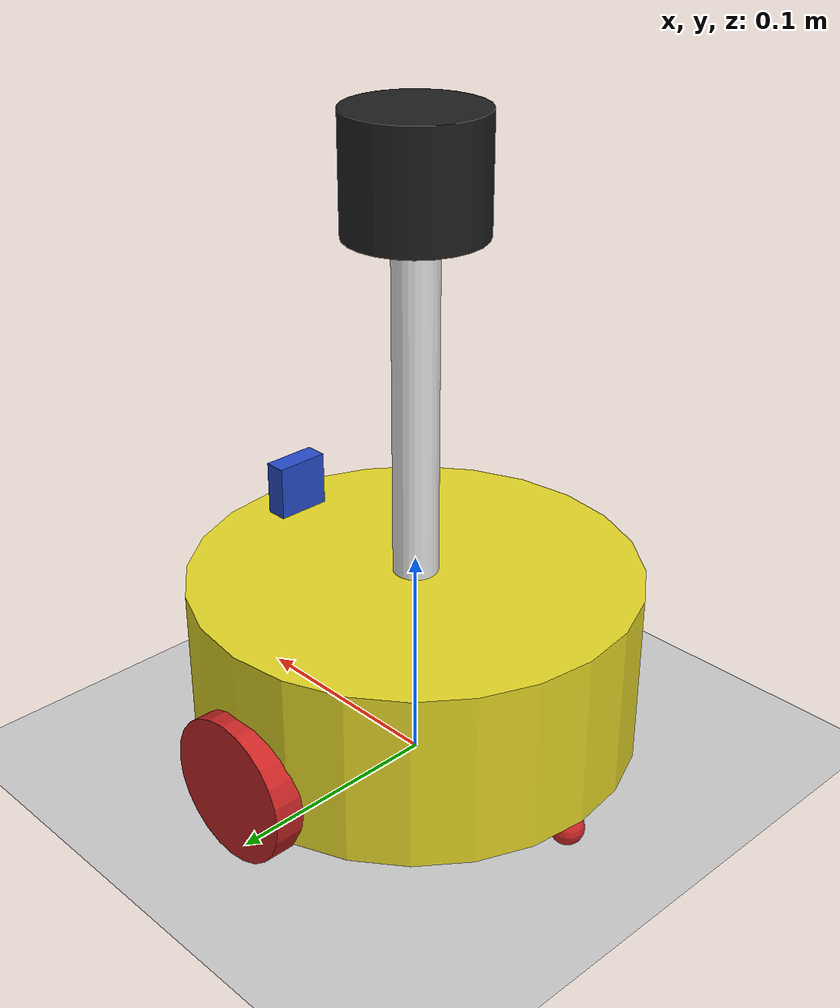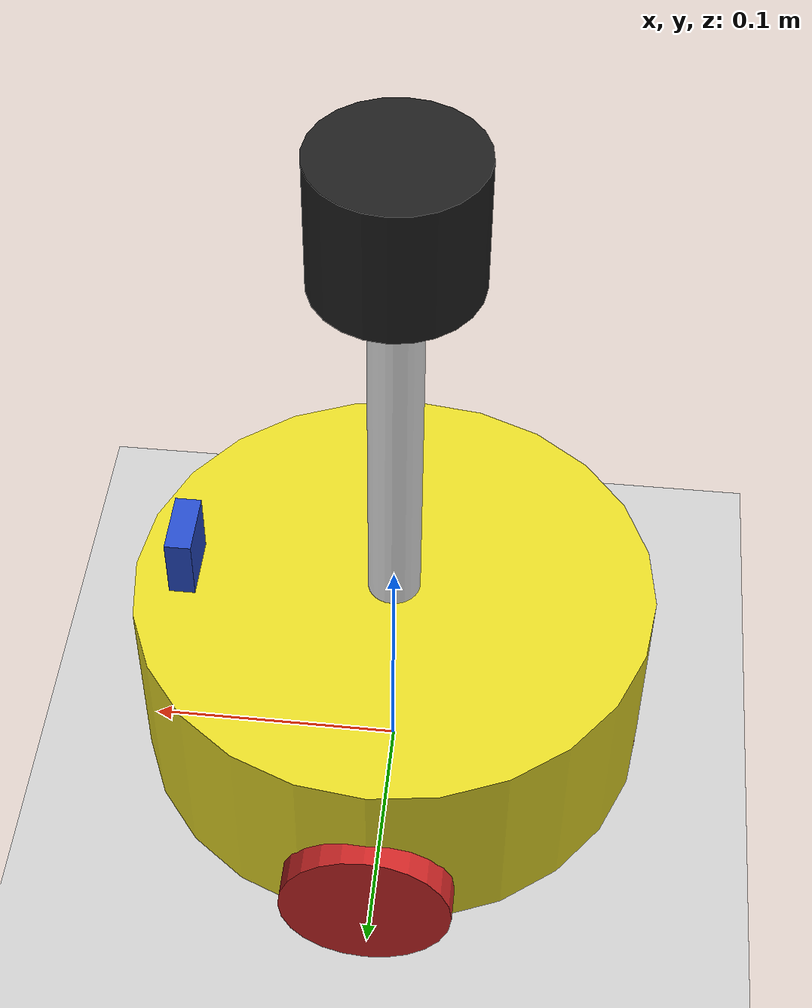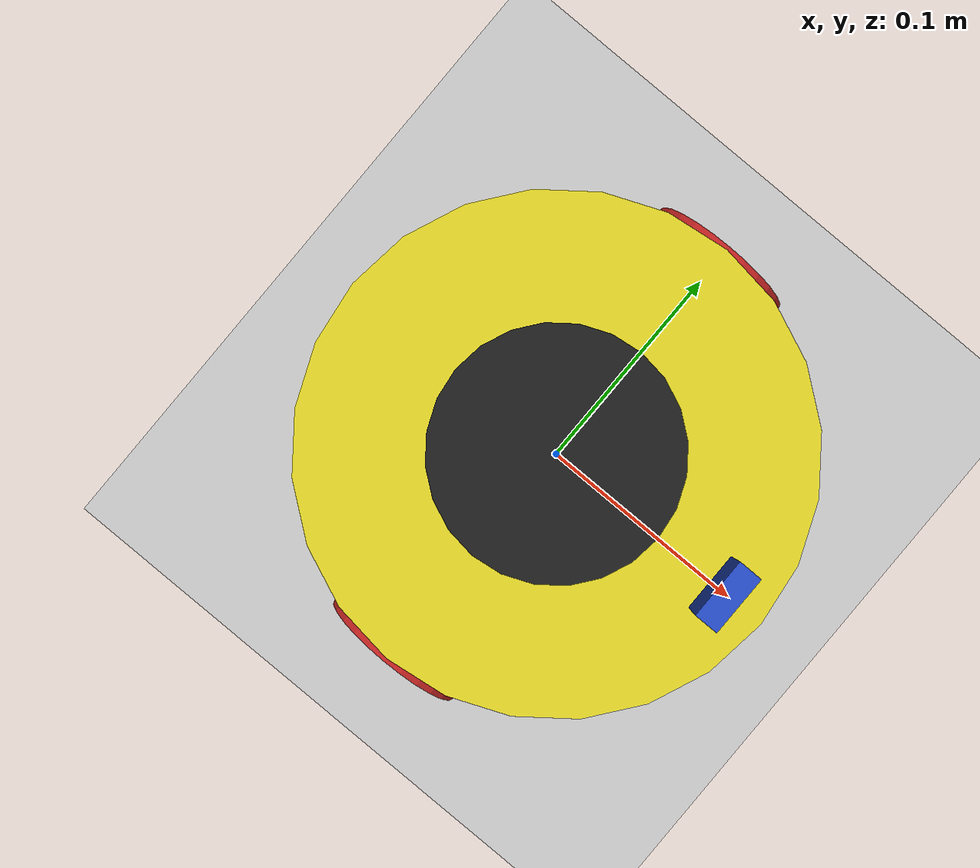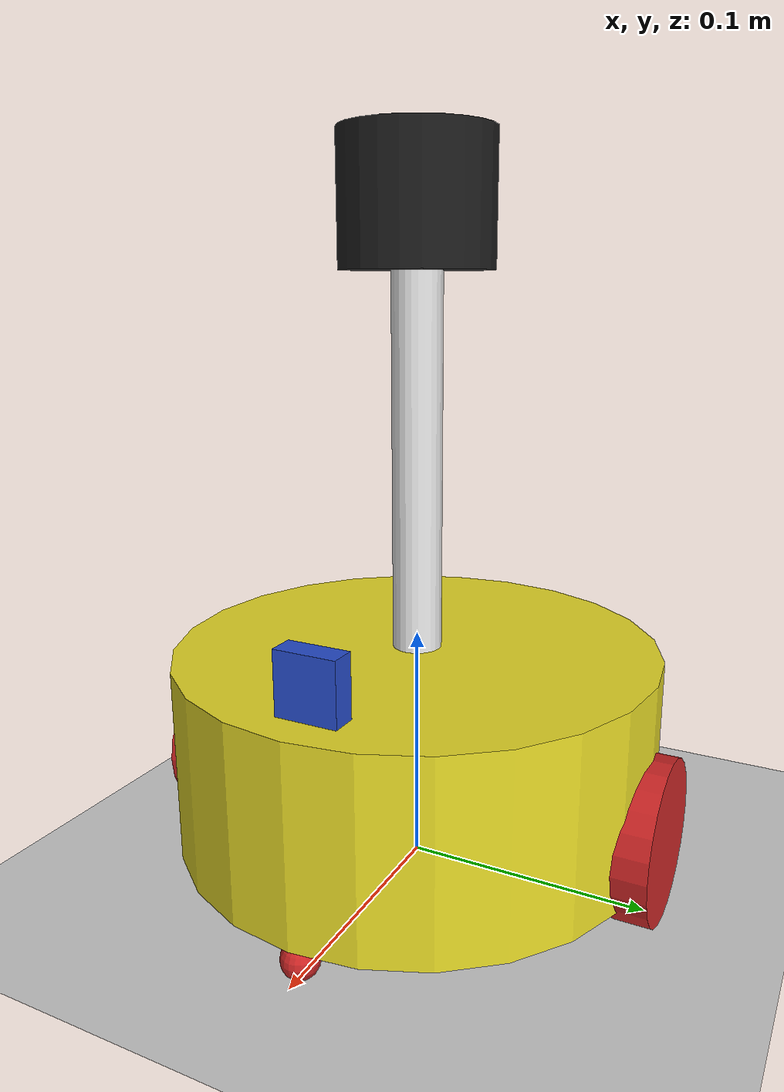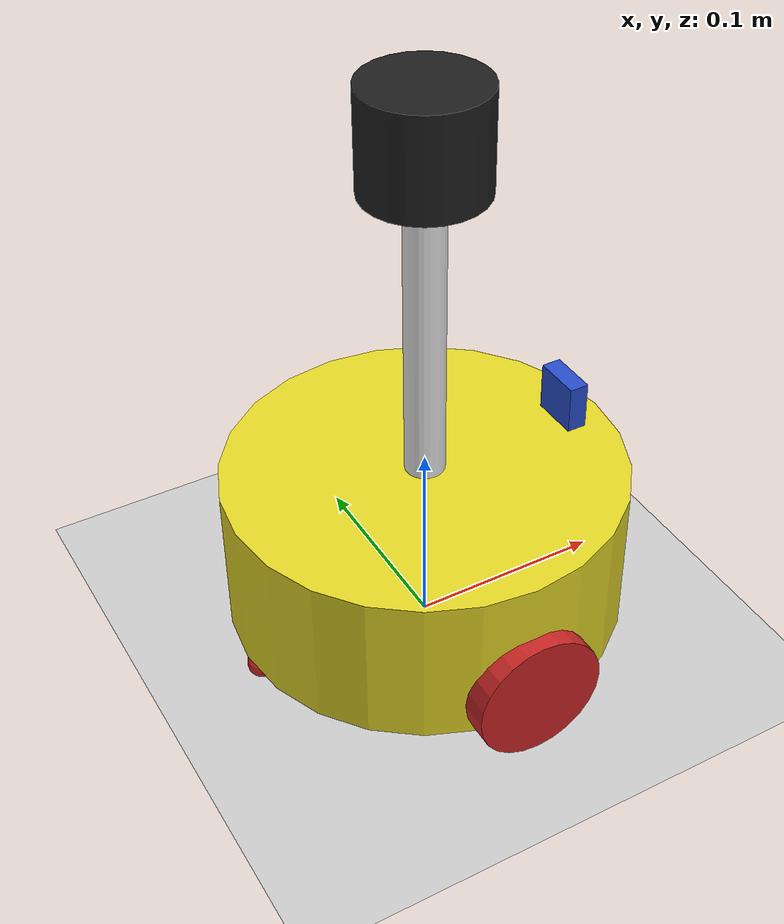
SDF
<sdf version="1.7">
 <world name="default">
  <model name="ground_plane">
   <static>1</static>
   <link name="link">
    <collision name="collision">
     <geometry><plane><normal>0 0 1</normal><size>100 100</size></plane></geometry>
     <surface><friction><ode><mu>100</mu><mu2>50</mu2></ode></friction></surface>
    </collision>
    <visual name="visual">
     <cast_shadows>0</cast_shadows>
     <geometry><plane><normal>0 0 1</normal><size>100 100</size></plane></geometry>
     <material>
      <script><uri>file://media/materials/scripts/gazebo.material</uri><name>Gazebo/Grey</name></script>
     </material>
    </visual>
   </link>
  </model>
  <model name="mycar">
   <link name="base_footprint">
    <inertial>
     <pose>0.00127 0 0.093611 0 -0 0</pose>
     <mass>0.63</mass>
     <inertia>
      <ixx>0.00557395</ixx>
      <ixy>0</ixy>
      <ixz>-1.11111e-05</ixz>
      <iyy>0.00563694</iyy>
      <iyz>0</iyz>
      <izz>0.00261003</izz>
     </inertia>
    </inertial>
    <collision name="base_footprint_fixed_joint_lump__base_link_collision">
     <pose>0 0 0.055 0 -0 0</pose>
     <geometry><cylinder><length>0.08</length><radius>0.1</radius></cylinder></geometry>
    </collision>
    <collision name="base_footprint_fixed_joint_lump__camera_collision_1">
     <pose>0.08 0 0.1075 0 -0 0</pose>
     <geometry><box><size>0.01 0.025 0.025</size></box></geometry>
    </collision>
    <collision name="base_footprint_fixed_joint_lump__support_collision_2">
     <pose>0 0 0.17 0 -0 0</pose>
     <geometry><cylinder><length>0.15</length><radius>0.01</radius></cylinder></geometry>
    </collision>
    <collision name="base_footprint_fixed_joint_lump__laser_collision_3">
     <pose>0 0 0.27 0 -0 0</pose>
     <geometry><cylinder><length>0.05</length><radius>0.03</radius></cylinder></geometry>
    </collision>
    <visual name="base_footprint_visual"><geometry><sphere><radius>0.001</radius></sphere></geometry></visual>
    <visual name="base_footprint_fixed_joint_lump__base_link_visual_1">
     <pose>0 0 0.055 0 -0 0</pose>
     <geometry><cylinder><length>0.08</length><radius>0.1</radius></cylinder></geometry>
     <material>
      <script><name>Gazebo/Yellow</name><uri>file://media/materials/scripts/gazebo.material</uri></script>
     </material>
    </visual>
    <visual name="base_footprint_fixed_joint_lump__camera_visual_2">
     <pose>0.08 0 0.1075 0 -0 0</pose>
     <geometry><box><size>0.01 0.025 0.025</size></box></geometry>
     <material>
      <script><name>Gazebo/Blue</name><uri>file://media/materials/scripts/gazebo.material</uri></script>
     </material>
    </visual>
    <visual name="base_footprint_fixed_joint_lump__support_visual_3">
     <pose>0 0 0.17 0 -0 0</pose>
     <geometry><cylinder><length>0.15</length><radius>0.01</radius></cylinder></geometry>
     <material>
      <script><name>Gazebo/White</name><uri>file://media/materials/scripts/gazebo.material</uri></script>
     </material>
    </visual>
    <visual name="base_footprint_fixed_joint_lump__laser_visual_4">
     <pose>0 0 0.27 0 -0 0</pose>
     <geometry><cylinder><length>0.05</length><radius>0.03</radius></cylinder></geometry>
     <material>
      <script><name>Gazebo/Black</name><uri>file://media/materials/scripts/gazebo.material</uri></script>
     </material>
    </visual>
    <sensor name="camera_node" type="camera">
     <update_rate>30</update_rate>
     <camera name="head">
      <horizontal_fov>1.39626</horizontal_fov>
      <image><width>1280</width><height>720</height><format>R8G8B8</format></image>
      <clip><near>0.02</near><far>300</far></clip>
      <noise><type>gaussian</type><mean>0</mean><stddev>0.007</stddev></noise>
     </camera>
     <plugin name="gazebo_camera" filename="libgazebo_ros_camera.so">
      <alwaysOn>1</alwaysOn>
      <updateRate>0.0</updateRate>
      <cameraName>/camera</cameraName>
      <imageTopicName>image_raw</imageTopicName>
      <cameraInfoTopicName>camera_info</cameraInfoTopicName>
      <frameName>camera</frameName>
      <hackBaseline>0.07</hackBaseline>
      <distortionK1>0.0</distortionK1>
      <distortionK2>0.0</distortionK2>
      <distortionK3>0.0</distortionK3>
      <distortionT1>0.0</distortionT1>
      <distortionT2>0.0</distortionT2>
      <robotNamespace>/</robotNamespace>
     </plugin>
     <pose>0.08 0 0.1075 0 -0 0</pose>
    </sensor>
   </link>
   <joint name="back_wheel2base_link" type="revolute">
    <pose relative_to="base_footprint">-0.0925 0 0.0075 0 -0 0</pose>
    <parent>base_footprint</parent>
    <child>back_wheel</child>
    <axis>
     <xyz>1 1 1</xyz>
     <limit><lower>-1e+16</lower><upper>1e+16</upper></limit>
     <dynamics><spring_reference>0</spring_reference><spring_stiffness>0</spring_stiffness></dynamics>
    </axis>
   </joint>
   <link name="back_wheel">
    <pose relative_to="back_wheel2base_link">0 0 0 0 -0 0</pose>
    <inertial>
     <mass>0.03</mass>
     <inertia>
      <ixx>6.75e-07</ixx>
      <ixy>0</ixy>
      <ixz>0</ixz>
      <iyy>6.75e-07</iyy>
      <iyz>0</iyz>
      <izz>6.75e-07</izz>
     </inertia>
    </inertial>
    <collision name="back_wheel_collision">
     <geometry><sphere><radius>0.0075</radius></sphere></geometry>
    </collision>
    <visual name="back_wheel_visual">
     <geometry><sphere><radius>0.0075</radius></sphere></geometry>
     <material>
      <script><name>Gazebo/Red</name><uri>file://media/materials/scripts/gazebo.material</uri></script>
     </material>
    </visual>
   </link>
   <joint name="front_wheel2base_link" type="revolute">
    <pose relative_to="base_footprint">0.0925 0 0.0075 0 -0 0</pose>
    <parent>base_footprint</parent>
    <child>front_wheel</child>
    <axis>
     <xyz>1 1 1</xyz>
     <limit><lower>-1e+16</lower><upper>1e+16</upper></limit>
     <dynamics><spring_reference>0</spring_reference><spring_stiffness>0</spring_stiffness></dynamics>
    </axis>
   </joint>
   <link name="front_wheel">
    <pose relative_to="front_wheel2base_link">0 0 0 0 -0 0</pose>
    <inertial>
     <mass>0.03</mass>
     <inertia>
      <ixx>6.75e-07</ixx>
      <ixy>0</ixy>
      <ixz>0</ixz>
      <iyy>6.75e-07</iyy>
      <iyz>0</iyz>
      <izz>6.75e-07</izz>
     </inertia>
    </inertial>
    <collision name="front_wheel_collision">
     <geometry><sphere><radius>0.0075</radius></sphere></geometry>
    </collision>
    <visual name="front_wheel_visual">
     <geometry><sphere><radius>0.0075</radius></sphere></geometry>
     <material>
      <script><name>Gazebo/Red</name><uri>file://media/materials/scripts/gazebo.material</uri></script>
     </material>
    </visual>
   </link>
   <joint name="left_wheel2base_link" type="revolute">
    <pose relative_to="base_footprint">0 0.1 0.0325 0 -0 0</pose>
    <parent>base_footprint</parent>
    <child>left_wheel</child>
    <axis>
     <xyz>0 1 0</xyz>
     <limit><lower>-1e+16</lower><upper>1e+16</upper></limit>
     <dynamics><spring_reference>0</spring_reference><spring_stiffness>0</spring_stiffness></dynamics>
    </axis>
   </joint>
   <link name="left_wheel">
    <pose relative_to="left_wheel2base_link">0 0 0 0 -0 0</pose>
    <inertial>
     <mass>0.05</mass>
     <inertia>
      <ixx>1.41406e-05</ixx>
      <ixy>0</ixy>
      <ixz>0</ixz>
      <iyy>1.41406e-05</iyy>
      <iyz>0</iyz>
      <izz>2.64063e-05</izz>
     </inertia>
    </inertial>
    <collision name="left_wheel_collision">
     <pose>0 0 0 1.5708 -0 0</pose>
     <geometry><cylinder><length>0.015</length><radius>0.0325</radius></cylinder></geometry>
    </collision>
    <visual name="left_wheel_visual">
     <pose>0 0 0 1.5708 -0 0</pose>
     <geometry><cylinder><length>0.015</length><radius>0.0325</radius></cylinder></geometry>
     <material>
      <script><name>Gazebo/Red</name><uri>file://media/materials/scripts/gazebo.material</uri></script>
     </material>
    </visual>
   </link>
   <joint name="right_wheel2base_link" type="revolute">
    <pose relative_to="base_footprint">0 -0.1 0.0325 0 -0 0</pose>
    <parent>base_footprint</parent>
    <child>right_wheel</child>
    <axis>
     <xyz>0 1 0</xyz>
     <limit><lower>-1e+16</lower><upper>1e+16</upper></limit>
     <dynamics><spring_reference>0</spring_reference><spring_stiffness>0</spring_stiffness></dynamics>
    </axis>
   </joint>
   <link name="right_wheel">
    <pose relative_to="right_wheel2base_link">0 0 0 0 -0 0</pose>
    <inertial>
     <mass>0.05</mass>
     <inertia>
      <ixx>1.41406e-05</ixx>
      <ixy>0</ixy>
      <ixz>0</ixz>
      <iyy>1.41406e-05</iyy>
      <iyz>0</iyz>
      <izz>2.64063e-05</izz>
     </inertia>
    </inertial>
    <collision name="right_wheel_collision">
     <pose>0 0 0 1.5708 -0 0</pose>
     <geometry><cylinder><length>0.015</length><radius>0.0325</radius></cylinder></geometry>
    </collision>
    <visual name="right_wheel_visual">
     <pose>0 0 0 1.5708 -0 0</pose>
     <geometry><cylinder><length>0.015</length><radius>0.0325</radius></cylinder></geometry>
     <material>
      <script><name>Gazebo/Red</name><uri>file://media/materials/scripts/gazebo.material</uri></script>
     </material>
    </visual>
   </link>
   <static>0</static>
   <plugin name="differential_drive_controller" filename="libgazebo_ros_diff_drive.so">
    <rosDebugLevel>Debug</rosDebugLevel>
    <publishWheelTF>1</publishWheelTF>
    <robotNamespace>/</robotNamespace>
    <publishTf>1</publishTf>
    <publishWheelJointState>1</publishWheelJointState>
    <alwaysOn>1</alwaysOn>
    <updateRate>100.0</updateRate>
    <legacyMode>1</legacyMode>
    <leftJoint>left_wheel2base_link</leftJoint>
    <rightJoint>right_wheel2base_link</rightJoint>
    <wheelSeparation>0.2</wheelSeparation>
    <wheelDiameter>0.065</wheelDiameter>
    <broadcastTF>1</broadcastTF>
    <wheelTorque>30</wheelTorque>
    <wheelAcceleration>1.8</wheelAcceleration>
    <commandTopic>cmd_vel</commandTopic>
    <odometryFrame>odom</odometryFrame>
    <odometryTopic>odom</odometryTopic>
    <robotBaseFrame>base_footprint</robotBaseFrame>
   </plugin>
  </model>
 </world>
</sdf>
